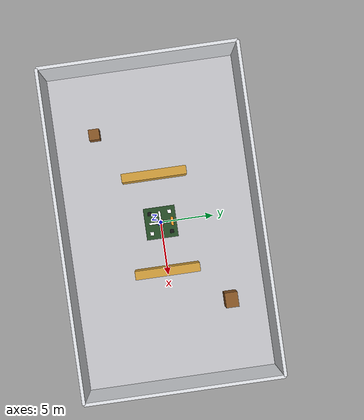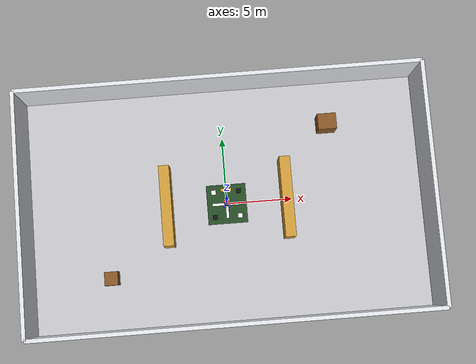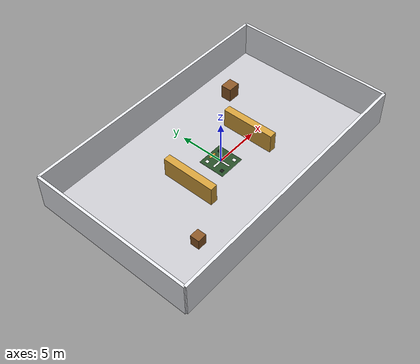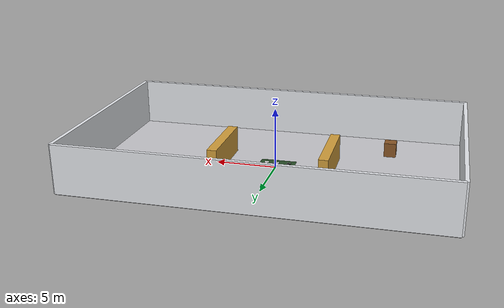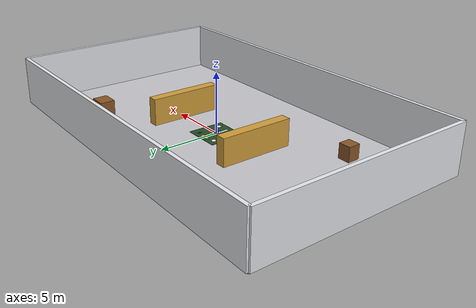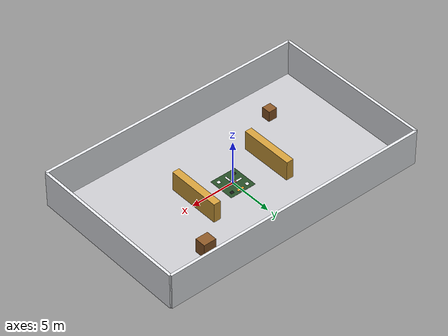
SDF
<?xml version="1.0"?>
<sdf version="1.9">
  <world name="warehouse_world">
    <gravity>0 0 -9.81</gravity>
    <magnetic_field>6.0e-06 2.3e-05 -4.2e-05</magnetic_field>
    <atmosphere type="adiabatic"/>

    <physics name="physics" type="ode">
      <max_step_size>0.004</max_step_size>
      <real_time_factor>1.0</real_time_factor>
      <real_time_update_rate>250</real_time_update_rate>
    </physics>

    <plugin filename="gz-sim8-physics-system" name="gz::sim::systems::Physics"/>
    <plugin filename="gz-sim8-user-commands-system" name="gz::sim::systems::UserCommands"/>
    <plugin filename="gz-sim8-scene-broadcaster-system" name="gz::sim::systems::SceneBroadcaster"/>
    <plugin filename="gz-sim8-sensors-system" name="gz::sim::systems::Sensors">
      <render_engine>ogre2</render_engine>
    </plugin>
    <plugin filename="gz-sim8-imu-system" name="gz::sim::systems::Imu"/>
    <plugin filename="gz-sim8-air-pressure-system" name="gz::sim::systems::AirPressure"/>

    <scene>
      <ambient>0.65 0.65 0.7 1</ambient>
      <background>0.88 0.9 0.95 1</background>
      <shadows>true</shadows>
      <grid>false</grid>
    </scene>

    <light type="directional" name="sun">
      <cast_shadows>true</cast_shadows>
      <pose>0 0 15 0 0 0</pose>
      <diffuse>1 1 1 1</diffuse>
      <specular>0.3 0.3 0.3 1</specular>
      <direction>-0.4 0.2 -1</direction>
    </light>

    <model name="warehouse_floor">
      <static>true</static>
      <link name="link">
        <collision name="collision">
          <geometry>
            <box>
              <size>30 18 0.1</size>
            </box>
          </geometry>
        </collision>
        <visual name="visual">
          <geometry>
            <box>
              <size>30 18 0.1</size>
            </box>
          </geometry>
          <material>
            <ambient>0.72 0.72 0.74 1</ambient>
            <diffuse>0.78 0.78 0.8 1</diffuse>
          </material>
        </visual>
      </link>
      <pose>0 0 -0.05 0 0 0</pose>
    </model>

    <model name="north_wall">
      <static>true</static>
      <link name="link">
        <collision name="collision">
          <geometry>
            <box>
              <size>30 0.3 4</size>
            </box>
          </geometry>
        </collision>
        <visual name="visual">
          <geometry>
            <box>
              <size>30 0.3 4</size>
            </box>
          </geometry>
          <material>
            <ambient>0.85 0.86 0.88 1</ambient>
            <diffuse>0.9 0.91 0.93 1</diffuse>
          </material>
        </visual>
      </link>
      <pose>0 9 2 0 0 0</pose>
    </model>

    <model name="south_wall">
      <static>true</static>
      <link name="link">
        <collision name="collision">
          <geometry>
            <box>
              <size>30 0.3 4</size>
            </box>
          </geometry>
        </collision>
        <visual name="visual">
          <geometry>
            <box>
              <size>30 0.3 4</size>
            </box>
          </geometry>
          <material>
            <ambient>0.85 0.86 0.88 1</ambient>
            <diffuse>0.9 0.91 0.93 1</diffuse>
          </material>
        </visual>
      </link>
      <pose>0 -9 2 0 0 0</pose>
    </model>

    <model name="east_wall">
      <static>true</static>
      <link name="link">
        <collision name="collision">
          <geometry>
            <box>
              <size>0.3 18 4</size>
            </box>
          </geometry>
        </collision>
        <visual name="visual">
          <geometry>
            <box>
              <size>0.3 18 4</size>
            </box>
          </geometry>
          <material>
            <ambient>0.85 0.86 0.88 1</ambient>
            <diffuse>0.9 0.91 0.93 1</diffuse>
          </material>
        </visual>
      </link>
      <pose>15 0 2 0 0 0</pose>
    </model>

    <model name="west_wall">
      <static>true</static>
      <link name="link">
        <collision name="collision">
          <geometry>
            <box>
              <size>0.3 18 4</size>
            </box>
          </geometry>
        </collision>
        <visual name="visual">
          <geometry>
            <box>
              <size>0.3 18 4</size>
            </box>
          </geometry>
          <material>
            <ambient>0.85 0.86 0.88 1</ambient>
            <diffuse>0.9 0.91 0.93 1</diffuse>
          </material>
        </visual>
      </link>
      <pose>-15 0 2 0 0 0</pose>
    </model>

    <model name="landing_pad">
      <static>true</static>
      <link name="link">
        <collision name="collision">
          <geometry>
            <box>
              <size>3 3 0.02</size>
            </box>
          </geometry>
        </collision>
        <visual name="visual">
          <geometry>
            <box>
              <size>3 3 0.02</size>
            </box>
          </geometry>
          <material>
            <ambient>0.12 0.2 0.12 1</ambient>
            <diffuse>0.15 0.3 0.15 1</diffuse>
          </material>
        </visual>
        <visual name="center_cross_long">
          <pose>0 0 0.011 0 0 0</pose>
          <geometry>
            <box>
              <size>2.2 0.2 0.002</size>
            </box>
          </geometry>
          <material>
            <ambient>0.96 0.96 0.96 1</ambient>
            <diffuse>0.99 0.99 0.99 1</diffuse>
          </material>
        </visual>
        <visual name="center_cross_wide">
          <pose>0 0 0.011 0 0 0</pose>
          <geometry>
            <box>
              <size>0.2 2.2 0.002</size>
            </box>
          </geometry>
          <material>
            <ambient>0.96 0.96 0.96 1</ambient>
            <diffuse>0.99 0.99 0.99 1</diffuse>
          </material>
        </visual>
        <visual name="center_marker">
          <pose>0 0 0.012 0 0 0</pose>
          <geometry>
            <box>
              <size>0.35 0.35 0.002</size>
            </box>
          </geometry>
          <material>
            <ambient>0.06 0.06 0.06 1</ambient>
            <diffuse>0.08 0.08 0.08 1</diffuse>
          </material>
        </visual>
        <visual name="north_marker">
          <pose>0 1.1 0.012 0 0 0</pose>
          <geometry>
            <box>
              <size>0.8 0.24 0.002</size>
            </box>
          </geometry>
          <material>
            <ambient>0.95 0.55 0.12 1</ambient>
            <diffuse>0.98 0.62 0.15 1</diffuse>
          </material>
        </visual>
        <visual name="southwest_marker">
          <pose>-0.95 -0.95 0.012 0 0 0</pose>
          <geometry>
            <box>
              <size>0.35 0.35 0.002</size>
            </box>
          </geometry>
          <material>
            <ambient>0.06 0.06 0.06 1</ambient>
            <diffuse>0.08 0.08 0.08 1</diffuse>
          </material>
        </visual>
        <visual name="southeast_marker">
          <pose>0.95 -0.95 0.012 0 0 0</pose>
          <geometry>
            <box>
              <size>0.35 0.35 0.002</size>
            </box>
          </geometry>
          <material>
            <ambient>0.96 0.96 0.96 1</ambient>
            <diffuse>0.99 0.99 0.99 1</diffuse>
          </material>
        </visual>
        <visual name="northwest_marker">
          <pose>-0.95 0.95 0.012 0 0 0</pose>
          <geometry>
            <box>
              <size>0.35 0.35 0.002</size>
            </box>
          </geometry>
          <material>
            <ambient>0.96 0.96 0.96 1</ambient>
            <diffuse>0.99 0.99 0.99 1</diffuse>
          </material>
        </visual>
        <visual name="northeast_marker">
          <pose>0.95 0.95 0.012 0 0 0</pose>
          <geometry>
            <box>
              <size>0.35 0.35 0.002</size>
            </box>
          </geometry>
          <material>
            <ambient>0.06 0.06 0.06 1</ambient>
            <diffuse>0.08 0.08 0.08 1</diffuse>
          </material>
        </visual>
      </link>
      <pose>0 0 0.01 0 0 0</pose>
    </model>

    <model name="shelf_row_left">
      <static>true</static>
      <link name="link">
        <collision name="collision">
          <geometry>
            <box>
              <size>0.8 6 2.2</size>
            </box>
          </geometry>
        </collision>
        <visual name="visual">
          <geometry>
            <box>
              <size>0.8 6 2.2</size>
            </box>
          </geometry>
          <material>
            <ambient>0.75 0.58 0.2 1</ambient>
            <diffuse>0.82 0.62 0.23 1</diffuse>
          </material>
        </visual>
      </link>
      <pose>-4.5 0 1.1 0 0 0</pose>
    </model>

    <model name="shelf_row_right">
      <static>true</static>
      <link name="link">
        <collision name="collision">
          <geometry>
            <box>
              <size>0.8 6 2.2</size>
            </box>
          </geometry>
        </collision>
        <visual name="visual">
          <geometry>
            <box>
              <size>0.8 6 2.2</size>
            </box>
          </geometry>
          <material>
            <ambient>0.75 0.58 0.2 1</ambient>
            <diffuse>0.82 0.62 0.23 1</diffuse>
          </material>
        </visual>
      </link>
      <pose>4.5 0 1.1 0 0 0</pose>
    </model>

    <model name="crate_stack_a">
      <static>true</static>
      <link name="link">
        <collision name="collision">
          <geometry>
            <box>
              <size>1.0 1.0 1.2</size>
            </box>
          </geometry>
        </collision>
        <visual name="visual">
          <geometry>
            <box>
              <size>1.0 1.0 1.2</size>
            </box>
          </geometry>
          <material>
            <ambient>0.45 0.28 0.12 1</ambient>
            <diffuse>0.54 0.34 0.15 1</diffuse>
          </material>
        </visual>
      </link>
      <pose>-9.0 -5.0 0.6 0 0 0</pose>
    </model>

    <model name="crate_stack_b">
      <static>true</static>
      <link name="link">
        <collision name="collision">
          <geometry>
            <box>
              <size>1.4 1.2 1.6</size>
            </box>
          </geometry>
        </collision>
        <visual name="visual">
          <geometry>
            <box>
              <size>1.4 1.2 1.6</size>
            </box>
          </geometry>
          <material>
            <ambient>0.45 0.28 0.12 1</ambient>
            <diffuse>0.54 0.34 0.15 1</diffuse>
          </material>
        </visual>
      </link>
      <pose>8.0 5.5 0.8 0 0 0</pose>
    </model>

    <include>
      <uri>model://quadcopter</uri>
      <name>quadcopter</name>
      <pose>0 0 0.18 0 0 0</pose>
    </include>
  </world>
</sdf>

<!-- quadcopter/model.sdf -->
<sdf version="1.9">
  <model name="quadcopter">
    <static>false</static>
    <pose>0 0 0.18 0 0 0</pose>

    <link name="base_link">
      <pose>0 0 0 0 0 0</pose>
      <inertial>
        <mass>1.0</mass>
        <inertia>
          <ixx>0.021</ixx>
          <iyy>0.021</iyy>
          <izz>0.038</izz>
          <ixy>0.0</ixy>
          <ixz>0.0</ixz>
          <iyz>0.0</iyz>
        </inertia>
      </inertial>

      <collision name="body_collision">
        <geometry>
          <box>
            <size>0.18 0.18 0.06</size>
          </box>
        </geometry>
      </collision>

      <visual name="body_visual">
        <geometry>
          <box>
            <size>0.18 0.18 0.06</size>
          </box>
        </geometry>
        <material>
          <ambient>0.15 0.15 0.18 1</ambient>
          <diffuse>0.18 0.18 0.22 1</diffuse>
          <specular>0.05 0.05 0.05 1</specular>
        </material>
      </visual>

      <visual name="arm_front_left">
        <pose>0.09 0.09 0 0 0 0.785398</pose>
        <geometry>
          <box>
            <size>0.26 0.03 0.02</size>
          </box>
        </geometry>
        <material>
          <ambient>0.7 0.15 0.15 1</ambient>
          <diffuse>0.8 0.2 0.2 1</diffuse>
        </material>
      </visual>

      <visual name="arm_front_right">
        <pose>0.09 -0.09 0 0 0 -0.785398</pose>
        <geometry>
          <box>
            <size>0.26 0.03 0.02</size>
          </box>
        </geometry>
        <material>
          <ambient>0.15 0.15 0.7 1</ambient>
          <diffuse>0.2 0.2 0.85 1</diffuse>
        </material>
      </visual>

      <visual name="camera_mount_visual">
        <pose>0.085 0 -0.01 0 0 0</pose>
        <geometry>
          <box>
            <size>0.05 0.04 0.01</size>
          </box>
        </geometry>
        <material>
          <ambient>0.08 0.08 0.08 1</ambient>
          <diffuse>0.12 0.12 0.12 1</diffuse>
        </material>
      </visual>

      <visual name="camera_body_visual">
        <pose>0.12 0 -0.015 0 0 0</pose>
        <geometry>
          <box>
            <size>0.04 0.03 0.025</size>
          </box>
        </geometry>
        <material>
          <ambient>0.04 0.04 0.04 1</ambient>
          <diffuse>0.08 0.08 0.08 1</diffuse>
        </material>
      </visual>

      <visual name="down_camera_mount_visual">
        <pose>0 0 -0.026 0 0 0</pose>
        <geometry>
          <box>
            <size>0.045 0.045 0.01</size>
          </box>
        </geometry>
        <material>
          <ambient>0.05 0.05 0.05 1</ambient>
          <diffuse>0.09 0.09 0.09 1</diffuse>
        </material>
      </visual>

      <sensor name="imu_sensor" type="imu">
        <always_on>true</always_on>
        <update_rate>250</update_rate>
        <visualize>false</visualize>
        <imu>
          <enable_orientation>false</enable_orientation>
          <angular_velocity>
            <x>
              <noise type="gaussian">
                <mean>0.0</mean>
                <stddev>0.003</stddev>
              </noise>
            </x>
            <y>
              <noise type="gaussian">
                <mean>0.0</mean>
                <stddev>0.003</stddev>
              </noise>
            </y>
            <z>
              <noise type="gaussian">
                <mean>0.0</mean>
                <stddev>0.003</stddev>
              </noise>
            </z>
          </angular_velocity>
          <linear_acceleration>
            <x>
              <noise type="gaussian">
                <mean>0.0</mean>
                <stddev>0.05</stddev>
              </noise>
            </x>
            <y>
              <noise type="gaussian">
                <mean>0.0</mean>
                <stddev>0.05</stddev>
              </noise>
            </y>
            <z>
              <noise type="gaussian">
                <mean>0.0</mean>
                <stddev>0.05</stddev>
              </noise>
            </z>
          </linear_acceleration>
        </imu>
      </sensor>

      <sensor name="barometer" type="air_pressure">
        <always_on>true</always_on>
        <update_rate>30</update_rate>
        <visualize>false</visualize>
        <air_pressure>
          <reference_altitude>0.0</reference_altitude>
          <pressure>
            <noise type="gaussian">
              <mean>0.0</mean>
              <stddev>1.5</stddev>
            </noise>
          </pressure>
        </air_pressure>
      </sensor>

      <sensor name="front_camera" type="camera">
        <pose>0.12 0 -0.015 0 0.15 0</pose>
        <always_on>true</always_on>
        <update_rate>30</update_rate>
        <visualize>false</visualize>
        <camera name="front_camera">
          <horizontal_fov>1.3962634</horizontal_fov>
          <lens>
            <intrinsics>
              <fx>381.36112213134766</fx>
              <fy>381.361141204834</fy>
              <cx>320.0</cx>
              <cy>240.0</cy>
              <s>0.0</s>
            </intrinsics>
          </lens>
          <distortion>
            <k1>0.0</k1>
            <k2>0.0</k2>
            <k3>0.0</k3>
            <p1>0.0</p1>
            <p2>0.0</p2>
            <center>0.5 0.5</center>
          </distortion>
          <image>
            <width>640</width>
            <height>480</height>
            <format>R8G8B8</format>
          </image>
          <clip>
            <near>0.08</near>
            <far>50.0</far>
          </clip>
          <noise>
            <type>gaussian</type>
            <mean>0.0</mean>
            <stddev>0.006</stddev>
          </noise>
        </camera>
      </sensor>

      <sensor name="down_camera" type="camera">
        <pose>0 0 -0.03 0 1.57079632679 0</pose>
        <always_on>true</always_on>
        <update_rate>45</update_rate>
        <visualize>false</visualize>
        <camera name="down_camera">
          <horizontal_fov>1.22173048</horizontal_fov>
          <lens>
            <intrinsics>
              <fx>415.69219381653056</fx>
              <fy>415.69219381653056</fy>
              <cx>320.0</cx>
              <cy>240.0</cy>
              <s>0.0</s>
            </intrinsics>
          </lens>
          <distortion>
            <k1>0.0</k1>
            <k2>0.0</k2>
            <k3>0.0</k3>
            <p1>0.0</p1>
            <p2>0.0</p2>
            <center>0.5 0.5</center>
          </distortion>
          <image>
            <width>640</width>
            <height>480</height>
            <format>R8G8B8</format>
          </image>
          <clip>
            <near>0.05</near>
            <far>25.0</far>
          </clip>
          <noise>
            <type>gaussian</type>
            <mean>0.0</mean>
            <stddev>0.004</stddev>
          </noise>
        </camera>
      </sensor>
    </link>

    <link name="rotor_front_left">
      <pose>0.18 0.18 0.04 0 0 0</pose>
      <inertial>
        <mass>0.02</mass>
        <inertia>
          <ixx>0.00002</ixx>
          <iyy>0.00002</iyy>
          <izz>0.00004</izz>
          <ixy>0.0</ixy>
          <ixz>0.0</ixz>
          <iyz>0.0</iyz>
        </inertia>
      </inertial>
      <collision name="collision">
        <geometry>
          <cylinder>
            <radius>0.09</radius>
            <length>0.01</length>
          </cylinder>
        </geometry>
      </collision>
      <visual name="visual">
        <geometry>
          <cylinder>
            <radius>0.09</radius>
            <length>0.01</length>
          </cylinder>
        </geometry>
        <material>
          <ambient>0.85 0.25 0.25 1</ambient>
          <diffuse>0.95 0.3 0.3 1</diffuse>
        </material>
      </visual>
    </link>

    <joint name="rotor_front_left_joint" type="revolute">
      <parent>base_link</parent>
      <child>rotor_front_left</child>
      <axis>
        <xyz>0 0 1</xyz>
        <limit>
          <lower>-1e16</lower>
          <upper>1e16</upper>
        </limit>
      </axis>
    </joint>

    <link name="rotor_front_right">
      <pose>0.18 -0.18 0.04 0 0 0</pose>
      <inertial>
        <mass>0.02</mass>
        <inertia>
          <ixx>0.00002</ixx>
          <iyy>0.00002</iyy>
          <izz>0.00004</izz>
          <ixy>0.0</ixy>
          <ixz>0.0</ixz>
          <iyz>0.0</iyz>
        </inertia>
      </inertial>
      <collision name="collision">
        <geometry>
          <cylinder>
            <radius>0.09</radius>
            <length>0.01</length>
          </cylinder>
        </geometry>
      </collision>
      <visual name="visual">
        <geometry>
          <cylinder>
            <radius>0.09</radius>
            <length>0.01</length>
          </cylinder>
        </geometry>
        <material>
          <ambient>0.2 0.2 0.85 1</ambient>
          <diffuse>0.25 0.25 0.95 1</diffuse>
        </material>
      </visual>
    </link>

    <joint name="rotor_front_right_joint" type="revolute">
      <parent>base_link</parent>
      <child>rotor_front_right</child>
      <axis>
        <xyz>0 0 1</xyz>
        <limit>
          <lower>-1e16</lower>
          <upper>1e16</upper>
        </limit>
      </axis>
    </joint>

    <link name="rotor_rear_right">
      <pose>-0.18 -0.18 0.04 0 0 0</pose>
      <inertial>
        <mass>0.02</mass>
        <inertia>
          <ixx>0.00002</ixx>
          <iyy>0.00002</iyy>
          <izz>0.00004</izz>
          <ixy>0.0</ixy>
          <ixz>0.0</ixz>
          <iyz>0.0</iyz>
        </inertia>
      </inertial>
      <collision name="collision">
        <geometry>
          <cylinder>
            <radius>0.09</radius>
            <length>0.01</length>
          </cylinder>
        </geometry>
      </collision>
      <visual name="visual">
        <geometry>
          <cylinder>
            <radius>0.09</radius>
            <length>0.01</length>
          </cylinder>
        </geometry>
        <material>
          <ambient>0.2 0.2 0.85 1</ambient>
          <diffuse>0.25 0.25 0.95 1</diffuse>
        </material>
      </visual>
    </link>

    <joint name="rotor_rear_right_joint" type="revolute">
      <parent>base_link</parent>
      <child>rotor_rear_right</child>
      <axis>
        <xyz>0 0 1</xyz>
        <limit>
          <lower>-1e16</lower>
          <upper>1e16</upper>
        </limit>
      </axis>
    </joint>

    <link name="rotor_rear_left">
      <pose>-0.18 0.18 0.04 0 0 0</pose>
      <inertial>
        <mass>0.02</mass>
        <inertia>
          <ixx>0.00002</ixx>
          <iyy>0.00002</iyy>
          <izz>0.00004</izz>
          <ixy>0.0</ixy>
          <ixz>0.0</ixz>
          <iyz>0.0</iyz>
        </inertia>
      </inertial>
      <collision name="collision">
        <geometry>
          <cylinder>
            <radius>0.09</radius>
            <length>0.01</length>
          </cylinder>
        </geometry>
      </collision>
      <visual name="visual">
        <geometry>
          <cylinder>
            <radius>0.09</radius>
            <length>0.01</length>
          </cylinder>
        </geometry>
        <material>
          <ambient>0.85 0.25 0.25 1</ambient>
          <diffuse>0.95 0.3 0.3 1</diffuse>
        </material>
      </visual>
    </link>

    <joint name="rotor_rear_left_joint" type="revolute">
      <parent>base_link</parent>
      <child>rotor_rear_left</child>
      <axis>
        <xyz>0 0 1</xyz>
        <limit>
          <lower>-1e16</lower>
          <upper>1e16</upper>
        </limit>
      </axis>
    </joint>

    <plugin filename="gz-sim8-multicopter-motor-model-system" name="gz::sim::systems::MulticopterMotorModel">
      <robotNamespace>quadcopter</robotNamespace>
      <jointName>rotor_front_left_joint</jointName>
      <linkName>rotor_front_left</linkName>
      <turningDirection>ccw</turningDirection>
      <timeConstantUp>0.0125</timeConstantUp>
      <timeConstantDown>0.025</timeConstantDown>
      <maxRotVelocity>900.0</maxRotVelocity>
      <motorConstant>8.54858e-06</motorConstant>
      <momentConstant>0.016</momentConstant>
      <commandSubTopic>command/motor_speed</commandSubTopic>
      <actuator_number>0</actuator_number>
      <motorNumber>0</motorNumber>
      <rotorDragCoefficient>8.06428e-04</rotorDragCoefficient>
      <rollingMomentCoefficient>1.0e-06</rollingMomentCoefficient>
      <rotorVelocitySlowdownSim>10.0</rotorVelocitySlowdownSim>
      <motorType>velocity</motorType>
    </plugin>

    <plugin filename="gz-sim8-multicopter-motor-model-system" name="gz::sim::systems::MulticopterMotorModel">
      <robotNamespace>quadcopter</robotNamespace>
      <jointName>rotor_front_right_joint</jointName>
      <linkName>rotor_front_right</linkName>
      <turningDirection>cw</turningDirection>
      <timeConstantUp>0.0125</timeConstantUp>
      <timeConstantDown>0.025</timeConstantDown>
      <maxRotVelocity>900.0</maxRotVelocity>
      <motorConstant>8.54858e-06</motorConstant>
      <momentConstant>0.016</momentConstant>
      <commandSubTopic>command/motor_speed</commandSubTopic>
      <actuator_number>1</actuator_number>
      <motorNumber>1</motorNumber>
      <rotorDragCoefficient>8.06428e-04</rotorDragCoefficient>
      <rollingMomentCoefficient>1.0e-06</rollingMomentCoefficient>
      <rotorVelocitySlowdownSim>10.0</rotorVelocitySlowdownSim>
      <motorType>velocity</motorType>
    </plugin>

    <plugin filename="gz-sim8-multicopter-motor-model-system" name="gz::sim::systems::MulticopterMotorModel">
      <robotNamespace>quadcopter</robotNamespace>
      <jointName>rotor_rear_right_joint</jointName>
      <linkName>rotor_rear_right</linkName>
      <turningDirection>ccw</turningDirection>
      <timeConstantUp>0.0125</timeConstantUp>
      <timeConstantDown>0.025</timeConstantDown>
      <maxRotVelocity>900.0</maxRotVelocity>
      <motorConstant>8.54858e-06</motorConstant>
      <momentConstant>0.016</momentConstant>
      <commandSubTopic>command/motor_speed</commandSubTopic>
      <actuator_number>2</actuator_number>
      <motorNumber>2</motorNumber>
      <rotorDragCoefficient>8.06428e-04</rotorDragCoefficient>
      <rollingMomentCoefficient>1.0e-06</rollingMomentCoefficient>
      <rotorVelocitySlowdownSim>10.0</rotorVelocitySlowdownSim>
      <motorType>velocity</motorType>
    </plugin>

    <plugin filename="gz-sim8-multicopter-motor-model-system" name="gz::sim::systems::MulticopterMotorModel">
      <robotNamespace>quadcopter</robotNamespace>
      <jointName>rotor_rear_left_joint</jointName>
      <linkName>rotor_rear_left</linkName>
      <turningDirection>cw</turningDirection>
      <timeConstantUp>0.0125</timeConstantUp>
      <timeConstantDown>0.025</timeConstantDown>
      <maxRotVelocity>900.0</maxRotVelocity>
      <motorConstant>8.54858e-06</motorConstant>
      <momentConstant>0.016</momentConstant>
      <commandSubTopic>command/motor_speed</commandSubTopic>
      <actuator_number>3</actuator_number>
      <motorNumber>3</motorNumber>
      <rotorDragCoefficient>8.06428e-04</rotorDragCoefficient>
      <rollingMomentCoefficient>1.0e-06</rollingMomentCoefficient>
      <rotorVelocitySlowdownSim>10.0</rotorVelocitySlowdownSim>
      <motorType>velocity</motorType>
    </plugin>
  </model>
</sdf>
